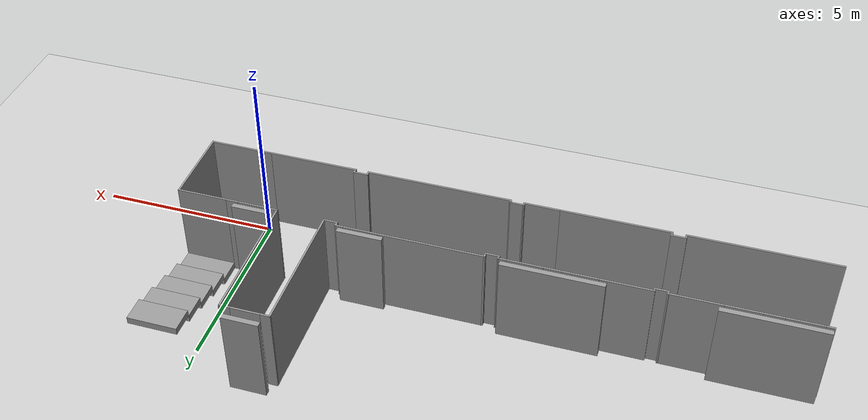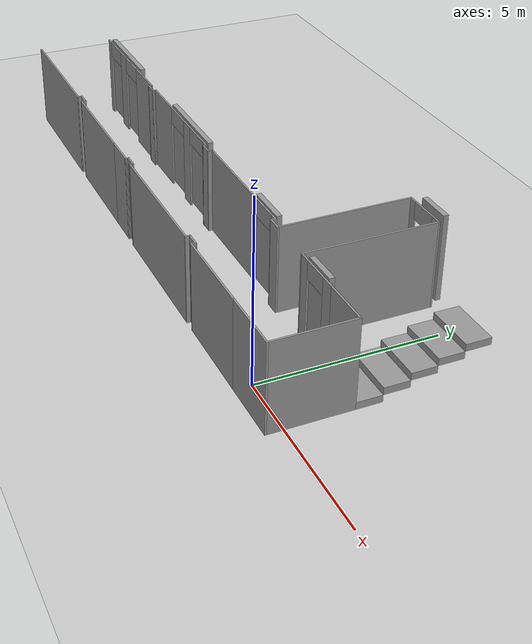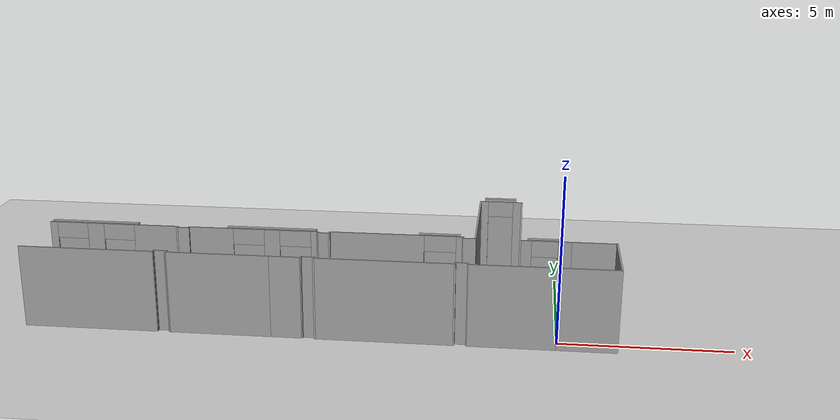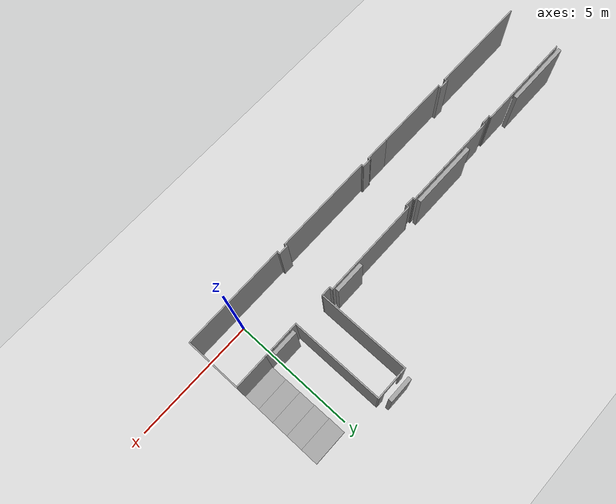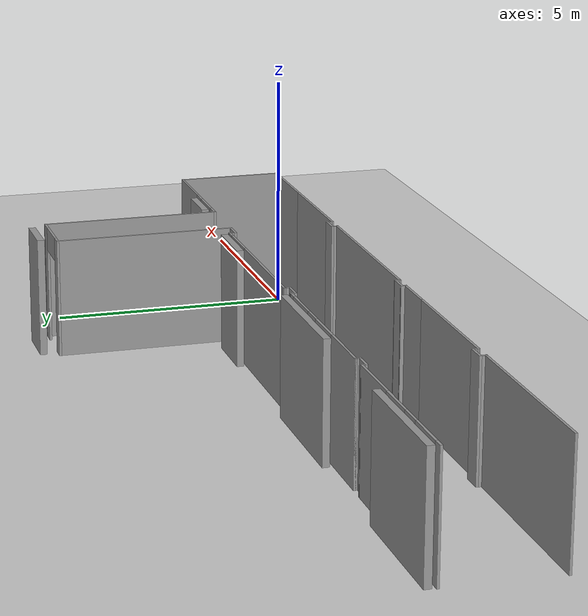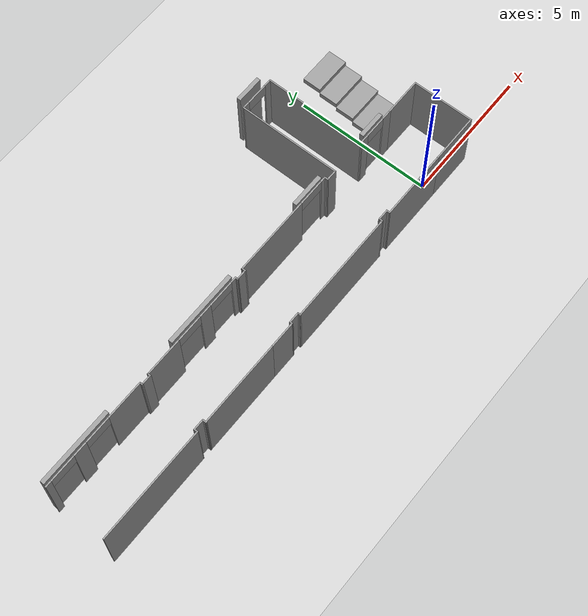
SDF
<sdf version="1.7">
 <world name="default">
  <model name="ground_plane">
   <static>1</static>
   <link name="link">
    <collision name="collision">
     <geometry><plane><normal>0 0 1</normal><size>100 100</size></plane></geometry>
     <surface><friction><ode><mu>100</mu><mu2>50</mu2></ode></friction></surface>
    </collision>
    <visual name="visual">
     <cast_shadows>0</cast_shadows>
     <geometry><plane><normal>0 0 1</normal><size>100 100</size></plane></geometry>
     <material>
      <script><uri>file://media/materials/scripts/gazebo.material</uri><name>Gazebo/Grey</name></script>
     </material>
    </visual>
   </link>
  </model>
  <model name="bot_world.world">
   <pose>-14.544 2.59256 0 0 -0 0</pose>
   <link name="Stairs_1">
    <visual name="Stairs_1_Visual_0">
     <pose>15.5557 -0.46112 0.1 0 -0 -3.14159</pose>
     <geometry><box><size>1.4 0.7 0.2</size></box></geometry>
     <material>
      <script><uri>file://media/materials/scripts/gazebo.material</uri><name>Gazebo/Grey</name></script>
      <ambient>1 1 1 1</ambient>
     </material>
     <meta><layer>0</layer></meta>
    </visual>
    <collision name="Stairs_1_Collision_0">
     <geometry><box><size>1.4 0.7 0.2</size></box></geometry>
     <pose>15.5557 -0.46112 0.1 0 -0 -3.14159</pose>
    </collision>
    <visual name="Stairs_1_Visual_1">
     <pose>15.5557 0.23888 0.3 0 -0 -3.14159</pose>
     <geometry><box><size>1.4 0.7 0.2</size></box></geometry>
     <material>
      <script><uri>file://media/materials/scripts/gazebo.material</uri><name>Gazebo/Grey</name></script>
      <ambient>1 1 1 1</ambient>
     </material>
     <meta><layer>0</layer></meta>
    </visual>
    <collision name="Stairs_1_Collision_1">
     <geometry><box><size>1.4 0.7 0.2</size></box></geometry>
     <pose>15.5557 0.23888 0.3 0 -0 -3.14159</pose>
    </collision>
    <visual name="Stairs_1_Visual_2">
     <pose>15.5557 0.93888 0.5 0 -0 -3.14159</pose>
     <geometry><box><size>1.4 0.7 0.2</size></box></geometry>
     <material>
      <script><uri>file://media/materials/scripts/gazebo.material</uri><name>Gazebo/Grey</name></script>
      <ambient>1 1 1 1</ambient>
     </material>
     <meta><layer>0</layer></meta>
    </visual>
    <collision name="Stairs_1_Collision_2">
     <geometry><box><size>1.4 0.7 0.2</size></box></geometry>
     <pose>15.5557 0.93888 0.5 0 -0 -3.14159</pose>
    </collision>
    <visual name="Stairs_1_Visual_3">
     <pose>15.5557 1.63888 0.7 0 -0 -3.14159</pose>
     <geometry><box><size>1.4 0.7 0.2</size></box></geometry>
     <material>
      <script><uri>file://media/materials/scripts/gazebo.material</uri><name>Gazebo/Grey</name></script>
      <ambient>1 1 1 1</ambient>
     </material>
     <meta><layer>0</layer></meta>
    </visual>
    <collision name="Stairs_1_Collision_3">
     <geometry><box><size>1.4 0.7 0.2</size></box></geometry>
     <pose>15.5557 1.63888 0.7 0 -0 -3.14159</pose>
    </collision>
    <visual name="Stairs_1_Visual_4">
     <pose>15.5557 2.33888 0.9 0 -0 -3.14159</pose>
     <geometry><box><size>1.4 0.7 0.2</size></box></geometry>
     <material>
      <script><uri>file://media/materials/scripts/gazebo.material</uri><name>Gazebo/Grey</name></script>
      <ambient>1 1 1 1</ambient>
     </material>
     <meta><layer>0</layer></meta>
    </visual>
    <collision name="Stairs_1_Collision_4">
     <geometry><box><size>1.4 0.7 0.2</size></box></geometry>
     <pose>15.5557 2.33888 0.9 0 -0 -3.14159</pose>
    </collision>
   </link>
   <link name="Wall_11">
    <collision name="Wall_11_Collision">
     <geometry><box><size>2.25963 0.05 2.5</size></box></geometry>
     <pose>0 0 1.25 0 -0 0</pose>
    </collision>
    <visual name="Wall_11_Visual">
     <pose>0 0 1.25 0 -0 0</pose>
     <geometry><box><size>2.25963 0.05 2.5</size></box></geometry>
     <material>
      <script><uri>file://media/materials/scripts/gazebo.material</uri><name>Gazebo/Grey</name></script>
      <ambient>1 1 1 1</ambient>
     </material>
     <meta><layer>0</layer></meta>
    </visual>
    <pose>16.2303 -1.92884 0 0 -0 -1.5708</pose>
   </link>
   <link name="Wall_115">
    <collision name="Wall_115_Collision">
     <geometry><box><size>3.06 0.05 2.5</size></box></geometry>
     <pose>0 0 1.25 0 -0 0</pose>
    </collision>
    <visual name="Wall_115_Visual">
     <pose>0 0 1.25 0 -0 0</pose>
     <geometry><box><size>3.06 0.05 2.5</size></box></geometry>
     <material>
      <script><uri>file://media/materials/scripts/gazebo.material</uri><name>Gazebo/Grey</name></script>
      <ambient>1 1 1 1</ambient>
     </material>
     <meta><layer>0</layer></meta>
    </visual>
    <pose>4.74433 -3.02584 0 0 -0 3.14159</pose>
   </link>
   <link name="Wall_117">
    <collision name="Wall_117_Collision">
     <geometry><box><size>0.16031 0.05 2.5</size></box></geometry>
     <pose>0 0 1.25 0 -0 0</pose>
    </collision>
    <visual name="Wall_117_Visual">
     <pose>0 0 1.25 0 -0 0</pose>
     <geometry><box><size>0.16031 0.05 2.5</size></box></geometry>
     <material>
      <script><uri>file://media/materials/scripts/gazebo.material</uri><name>Gazebo/Grey</name></script>
      <ambient>1 1 1 1</ambient>
     </material>
     <meta><layer>0</layer></meta>
    </visual>
    <pose>3.23963 -2.97069 0 0 -0 1.56535</pose>
   </link>
   <link name="Wall_118">
    <collision name="Wall_118_Collision">
     <geometry><box><size>0.42 0.05 2.5</size></box></geometry>
     <pose>0 0 1.25 0 -0 0</pose>
    </collision>
    <visual name="Wall_118_Visual">
     <pose>0 0 1.25 0 -0 0</pose>
     <geometry><box><size>0.42 0.05 2.5</size></box></geometry>
     <material>
      <script><uri>file://media/materials/scripts/gazebo.material</uri><name>Gazebo/Grey</name></script>
      <ambient>1 1 1 1</ambient>
     </material>
     <meta><layer>0</layer></meta>
    </visual>
    <pose>3.05433 -2.91433 0 0 -0 3.14159</pose>
   </link>
   <link name="Wall_119">
    <collision name="Wall_119_Collision">
     <geometry><box><size>0.16031 0.05 2.5</size></box></geometry>
     <pose>0 0 1.25 0 -0 0</pose>
    </collision>
    <visual name="Wall_119_Visual">
     <pose>0 0 1.25 0 -0 0</pose>
     <geometry><box><size>0.16031 0.05 2.5</size></box></geometry>
     <material>
      <script><uri>file://media/materials/scripts/gazebo.material</uri><name>Gazebo/Grey</name></script>
      <ambient>1 1 1 1</ambient>
     </material>
     <meta><layer>0</layer></meta>
    </visual>
    <pose>2.86963 -2.97069 0 0 -0 -1.57624</pose>
   </link>
   <link name="Wall_120">
    <collision name="Wall_120_Collision">
     <geometry><box><size>4.06 0.05 2.5</size></box></geometry>
     <pose>0 0 1.25 0 -0 0</pose>
    </collision>
    <visual name="Wall_120_Visual">
     <pose>0 0 1.25 0 -0 0</pose>
     <geometry><box><size>4.06 0.05 2.5</size></box></geometry>
     <material>
      <script><uri>file://media/materials/scripts/gazebo.material</uri><name>Gazebo/Grey</name></script>
      <ambient>1 1 1 1</ambient>
     </material>
     <meta><layer>0</layer></meta>
    </visual>
    <pose>0.864333 -3.02584 0 0 -0 -3.14159</pose>
   </link>
   <link name="Wall_13">
    <collision name="Wall_13_Collision">
     <geometry><box><size>1.4 0.05 2.5</size></box></geometry>
     <pose>0 0 1.25 0 -0 0</pose>
    </collision>
    <visual name="Wall_13_Visual">
     <pose>0 0 1.25 0 -0 0</pose>
     <geometry><box><size>1.4 0.05 2.5</size></box></geometry>
     <material>
      <script><uri>file://media/materials/scripts/gazebo.material</uri><name>Gazebo/Grey</name></script>
      <ambient>1 1 1 1</ambient>
     </material>
     <meta><layer>0</layer></meta>
    </visual>
    <pose>15.5553 -0.823841 0 0 -0 3.14159</pose>
   </link>
   <link name="Wall_15">
    <pose>14.1353 -0.823841 0 0 -0 3.14159</pose>
    <visual name="Wall_15_Visual_0">
     <pose>-0.569151 0 1.25 0 -0 0</pose>
     <geometry><box><size>0.401698 0.05 2.5</size></box></geometry>
     <material>
      <script><uri>file://media/materials/scripts/gazebo.material</uri><name>Gazebo/Grey</name></script>
      <ambient>1 1 1 1</ambient>
     </material>
     <meta><layer>0</layer></meta>
    </visual>
    <collision name="Wall_15_Collision_0">
     <geometry><box><size>0.401698 0.05 2.5</size></box></geometry>
     <pose>-0.569151 0 1.25 0 -0 0</pose>
    </collision>
    <visual name="Wall_15_Visual_1">
     <pose>0.590849 0 1.25 0 -0 0</pose>
     <geometry><box><size>0.358302 0.05 2.5</size></box></geometry>
     <material>
      <script><uri>file://media/materials/scripts/gazebo.material</uri><name>Gazebo/Grey</name></script>
      <ambient>1 1 1 1</ambient>
     </material>
     <meta><layer>0</layer></meta>
    </visual>
    <collision name="Wall_15_Collision_1">
     <geometry><box><size>0.358302 0.05 2.5</size></box></geometry>
     <pose>0.590849 0 1.25 0 -0 0</pose>
    </collision>
    <visual name="Wall_15_Visual_2">
     <pose>0.021698 0 2.25 0 -0 0</pose>
     <geometry><box><size>0.78 0.05 0.5</size></box></geometry>
     <material>
      <script><uri>file://media/materials/scripts/gazebo.material</uri><name>Gazebo/Grey</name></script>
      <ambient>1 1 1 1</ambient>
     </material>
     <meta><layer>0</layer></meta>
    </visual>
    <collision name="Wall_15_Collision_2">
     <geometry><box><size>0.78 0.05 0.5</size></box></geometry>
     <pose>0.021698 0 2.25 0 -0 0</pose>
    </collision>
   </link>
   <link name="Wall_17">
    <collision name="Wall_17_Collision">
     <geometry><box><size>1 0.15 2.5</size></box></geometry>
     <pose>0 0 1.25 0 -0 0</pose>
    </collision>
    <visual name="Wall_17_Visual">
     <pose>0 0 1.25 0 -0 0</pose>
     <geometry><box><size>1 0.15 2.5</size></box></geometry>
     <material>
      <script><uri>file://media/materials/scripts/gazebo.material</uri><name>Gazebo/Grey</name></script>
      <ambient>1 1 1 1</ambient>
     </material>
     <meta><layer>0</layer></meta>
    </visual>
    <pose>14.1043 -0.666199 0 0 -0 0</pose>
   </link>
   <link name="Wall_19">
    <collision name="Wall_19_Collision">
     <geometry><box><size>3.76 0.05 2.5</size></box></geometry>
     <pose>0 0 1.25 0 -0 0</pose>
    </collision>
    <visual name="Wall_19_Visual">
     <pose>0 0 1.25 0 -0 0</pose>
     <geometry><box><size>3.76 0.05 2.5</size></box></geometry>
     <material>
      <script><uri>file://media/materials/scripts/gazebo.material</uri><name>Gazebo/Grey</name></script>
      <ambient>1 1 1 1</ambient>
     </material>
     <meta><layer>0</layer></meta>
    </visual>
    <pose>13.3903 1.03116 0 0 -0 1.5708</pose>
   </link>
   <link name="Wall_21">
    <pose>12.7278 2.88616 0 0 -0 3.14159</pose>
    <visual name="Wall_21_Visual_0">
     <pose>-0.536013 0 1.25 0 -0 0</pose>
     <geometry><box><size>0.302974 0.05 2.5</size></box></geometry>
     <material>
      <script><uri>file://media/materials/scripts/gazebo.material</uri><name>Gazebo/Grey</name></script>
      <ambient>1 1 1 1</ambient>
     </material>
     <meta><layer>0</layer></meta>
    </visual>
    <collision name="Wall_21_Collision_0">
     <geometry><box><size>0.302974 0.05 2.5</size></box></geometry>
     <pose>-0.536013 0 1.25 0 -0 0</pose>
    </collision>
    <visual name="Wall_21_Visual_1">
     <pose>0.551487 0 1.25 0 -0 0</pose>
     <geometry><box><size>0.272026 0.05 2.5</size></box></geometry>
     <material>
      <script><uri>file://media/materials/scripts/gazebo.material</uri><name>Gazebo/Grey</name></script>
      <ambient>1 1 1 1</ambient>
     </material>
     <meta><layer>0</layer></meta>
    </visual>
    <collision name="Wall_21_Collision_1">
     <geometry><box><size>0.272026 0.05 2.5</size></box></geometry>
     <pose>0.551487 0 1.25 0 -0 0</pose>
    </collision>
    <visual name="Wall_21_Visual_2">
     <pose>0.015474 0 2.25 0 -0 0</pose>
     <geometry><box><size>0.8 0.05 0.5</size></box></geometry>
     <material>
      <script><uri>file://media/materials/scripts/gazebo.material</uri><name>Gazebo/Grey</name></script>
      <ambient>1 1 1 1</ambient>
     </material>
     <meta><layer>0</layer></meta>
    </visual>
    <collision name="Wall_21_Collision_2">
     <geometry><box><size>0.8 0.05 0.5</size></box></geometry>
     <pose>0.015474 0 2.25 0 -0 0</pose>
    </collision>
   </link>
   <link name="Wall_23">
    <collision name="Wall_23_Collision">
     <geometry><box><size>1 0.15 2.5</size></box></geometry>
     <pose>0 0 1.25 0 -0 0</pose>
    </collision>
    <visual name="Wall_23_Visual">
     <pose>0 0 1.25 0 -0 0</pose>
     <geometry><box><size>1 0.15 2.5</size></box></geometry>
     <material>
      <script><uri>file://media/materials/scripts/gazebo.material</uri><name>Gazebo/Grey</name></script>
      <ambient>1 1 1 1</ambient>
     </material>
     <meta><layer>0</layer></meta>
    </visual>
    <pose>12.6998 3.21334 0 0 -0 0</pose>
   </link>
   <link name="Wall_25">
    <collision name="Wall_25_Collision">
     <geometry><box><size>3.76 0.05 2.5</size></box></geometry>
     <pose>0 0 1.25 0 -0 0</pose>
    </collision>
    <visual name="Wall_25_Visual">
     <pose>0 0 1.25 0 -0 0</pose>
     <geometry><box><size>3.76 0.05 2.5</size></box></geometry>
     <material>
      <script><uri>file://media/materials/scripts/gazebo.material</uri><name>Gazebo/Grey</name></script>
      <ambient>1 1 1 1</ambient>
     </material>
     <meta><layer>0</layer></meta>
    </visual>
    <pose>12.0653 1.03116 0 0 -0 -1.5708</pose>
   </link>
   <link name="Wall_33">
    <collision name="Wall_33_Collision">
     <geometry><box><size>0.42 0.05 2.5</size></box></geometry>
     <pose>0 0 1.25 0 -0 0</pose>
    </collision>
    <visual name="Wall_33_Visual">
     <pose>0 0 1.25 0 -0 0</pose>
     <geometry><box><size>0.42 0.05 2.5</size></box></geometry>
     <material>
      <script><uri>file://media/materials/scripts/gazebo.material</uri><name>Gazebo/Grey</name></script>
      <ambient>1 1 1 1</ambient>
     </material>
     <meta><layer>0</layer></meta>
    </visual>
    <pose>11.8803 -0.823841 0 0 -0 3.14159</pose>
   </link>
   <link name="Wall_34">
    <collision name="Wall_34_Collision">
     <geometry><box><size>0.165815 0.05 2.5</size></box></geometry>
     <pose>0 0 1.25 0 -0 0</pose>
    </collision>
    <visual name="Wall_34_Visual">
     <pose>0 0 1.25 0 -0 0</pose>
     <geometry><box><size>0.165815 0.05 2.5</size></box></geometry>
     <material>
      <script><uri>file://media/materials/scripts/gazebo.material</uri><name>Gazebo/Grey</name></script>
      <ambient>1 1 1 1</ambient>
     </material>
     <meta><layer>0</layer></meta>
    </visual>
    <pose>11.6953 -0.765934 0 0 -0 1.57199</pose>
   </link>
   <link name="Wall_35">
    <pose>9.68019 -0.709288 0 0 -0 -3.14097</pose>
    <visual name="Wall_35_Visual_0">
     <pose>-1.92329 0 1.25 0 -0 0</pose>
     <geometry><box><size>0.233415 0.05 2.5</size></box></geometry>
     <material>
      <script><uri>file://media/materials/scripts/gazebo.material</uri><name>Gazebo/Grey</name></script>
      <ambient>1 1 1 1</ambient>
     </material>
     <meta><layer>0</layer></meta>
    </visual>
    <collision name="Wall_35_Collision_0">
     <geometry><box><size>0.233415 0.05 2.5</size></box></geometry>
     <pose>-1.92329 0 1.25 0 -0 0</pose>
    </collision>
    <visual name="Wall_35_Visual_1">
     <pose>0.596708 0 1.25 0 -0 0</pose>
     <geometry><box><size>2.88659 0.05 2.5</size></box></geometry>
     <material>
      <script><uri>file://media/materials/scripts/gazebo.material</uri><name>Gazebo/Grey</name></script>
      <ambient>1 1 1 1</ambient>
     </material>
     <meta><layer>0</layer></meta>
    </visual>
    <collision name="Wall_35_Collision_1">
     <geometry><box><size>2.88659 0.05 2.5</size></box></geometry>
     <pose>0.596708 0 1.25 0 -0 0</pose>
    </collision>
    <visual name="Wall_35_Visual_2">
     <pose>-1.32658 0 2.25 0 -0 0</pose>
     <geometry><box><size>0.96 0.05 0.5</size></box></geometry>
     <material>
      <script><uri>file://media/materials/scripts/gazebo.material</uri><name>Gazebo/Grey</name></script>
      <ambient>1 1 1 1</ambient>
     </material>
     <meta><layer>0</layer></meta>
    </visual>
    <collision name="Wall_35_Collision_2">
     <geometry><box><size>0.96 0.05 0.5</size></box></geometry>
     <pose>-1.32658 0 2.25 0 -0 0</pose>
    </collision>
   </link>
   <link name="Wall_37">
    <collision name="Wall_37_Collision">
     <geometry><box><size>1.25 0.15 2.5</size></box></geometry>
     <pose>0 0 1.25 0 -0 0</pose>
    </collision>
    <visual name="Wall_37_Visual">
     <pose>0 0 1.25 0 -0 0</pose>
     <geometry><box><size>1.25 0.15 2.5</size></box></geometry>
     <material>
      <script><uri>file://media/materials/scripts/gazebo.material</uri><name>Gazebo/Grey</name></script>
      <ambient>1 1 1 1</ambient>
     </material>
     <meta><layer>0</layer></meta>
    </visual>
    <pose>10.9877 -0.564022 0 0 -0 0</pose>
   </link>
   <link name="Wall_39">
    <collision name="Wall_39_Collision">
     <geometry><box><size>0.16433 0.05 2.5</size></box></geometry>
     <pose>0 0 1.25 0 -0 0</pose>
    </collision>
    <visual name="Wall_39_Visual">
     <pose>0 0 1.25 0 -0 0</pose>
     <geometry><box><size>0.16433 0.05 2.5</size></box></geometry>
     <material>
      <script><uri>file://media/materials/scripts/gazebo.material</uri><name>Gazebo/Grey</name></script>
      <ambient>1 1 1 1</ambient>
     </material>
     <meta><layer>0</layer></meta>
    </visual>
    <pose>7.6653 -0.767445 0 0 -0 -1.56897</pose>
   </link>
   <link name="Wall_40">
    <collision name="Wall_40_Collision">
     <geometry><box><size>0.408421 0.05 2.5</size></box></geometry>
     <pose>0 0 1.25 0 -0 0</pose>
    </collision>
    <visual name="Wall_40_Visual">
     <pose>0 0 1.25 0 -0 0</pose>
     <geometry><box><size>0.408421 0.05 2.5</size></box></geometry>
     <material>
      <script><uri>file://media/materials/scripts/gazebo.material</uri><name>Gazebo/Grey</name></script>
      <ambient>1 1 1 1</ambient>
     </material>
     <meta><layer>0</layer></meta>
    </visual>
    <pose>7.48596 -0.824491 0 0 -0 -3.14076</pose>
   </link>
   <link name="Wall_41">
    <collision name="Wall_41_Collision">
     <geometry><box><size>0.13 0.05 2.5</size></box></geometry>
     <pose>0 0 1.25 0 -0 0</pose>
    </collision>
    <visual name="Wall_41_Visual">
     <pose>0 0 1.25 0 -0 0</pose>
     <geometry><box><size>0.13 0.05 2.5</size></box></geometry>
     <material>
      <script><uri>file://media/materials/scripts/gazebo.material</uri><name>Gazebo/Grey</name></script>
      <ambient>1 1 1 1</ambient>
     </material>
     <meta><layer>0</layer></meta>
    </visual>
    <pose>7.30722 -0.78464 0 0 -0 1.56661</pose>
   </link>
   <link name="Wall_43">
    <pose>5.31239 -0.744641 0 0 -0 3.14159</pose>
    <visual name="Wall_43_Visual_0">
     <pose>-1.90075 0 1.25 0 -0 0</pose>
     <geometry><box><size>0.238496 0.05 2.5</size></box></geometry>
     <material>
      <script><uri>file://media/materials/scripts/gazebo.material</uri><name>Gazebo/Grey</name></script>
      <ambient>1 1 1 1</ambient>
     </material>
     <meta><layer>0</layer></meta>
    </visual>
    <collision name="Wall_43_Collision_0">
     <geometry><box><size>0.238496 0.05 2.5</size></box></geometry>
     <pose>-1.90075 0 1.25 0 -0 0</pose>
    </collision>
    <visual name="Wall_43_Visual_1">
     <pose>-0.582013 0 1.25 0 -0 0</pose>
     <geometry><box><size>0.478981 0.05 2.5</size></box></geometry>
     <material>
      <script><uri>file://media/materials/scripts/gazebo.material</uri><name>Gazebo/Grey</name></script>
      <ambient>1 1 1 1</ambient>
     </material>
     <meta><layer>0</layer></meta>
    </visual>
    <collision name="Wall_43_Collision_1">
     <geometry><box><size>0.478981 0.05 2.5</size></box></geometry>
     <pose>-0.582013 0 1.25 0 -0 0</pose>
    </collision>
    <visual name="Wall_43_Visual_2">
     <pose>1.31874 0 1.25 0 -0 0</pose>
     <geometry><box><size>1.40252 0.05 2.5</size></box></geometry>
     <material>
      <script><uri>file://media/materials/scripts/gazebo.material</uri><name>Gazebo/Grey</name></script>
      <ambient>1 1 1 1</ambient>
     </material>
     <meta><layer>0</layer></meta>
    </visual>
    <collision name="Wall_43_Collision_2">
     <geometry><box><size>1.40252 0.05 2.5</size></box></geometry>
     <pose>1.31874 0 1.25 0 -0 0</pose>
    </collision>
    <visual name="Wall_43_Visual_3">
     <pose>-1.3015 0 2.25 0 -0 0</pose>
     <geometry><box><size>0.96 0.05 0.5</size></box></geometry>
     <material>
      <script><uri>file://media/materials/scripts/gazebo.material</uri><name>Gazebo/Grey</name></script>
      <ambient>1 1 1 1</ambient>
     </material>
     <meta><layer>0</layer></meta>
    </visual>
    <collision name="Wall_43_Collision_3">
     <geometry><box><size>0.96 0.05 0.5</size></box></geometry>
     <pose>-1.3015 0 2.25 0 -0 0</pose>
    </collision>
    <visual name="Wall_43_Visual_4">
     <pose>0.137477 0 2.25 0 -0 0</pose>
     <geometry><box><size>0.96 0.05 0.5</size></box></geometry>
     <material>
      <script><uri>file://media/materials/scripts/gazebo.material</uri><name>Gazebo/Grey</name></script>
      <ambient>1 1 1 1</ambient>
     </material>
     <meta><layer>0</layer></meta>
    </visual>
    <collision name="Wall_43_Collision_4">
     <geometry><box><size>0.96 0.05 0.5</size></box></geometry>
     <pose>0.137477 0 2.25 0 -0 0</pose>
    </collision>
   </link>
   <link name="Wall_45">
    <collision name="Wall_45_Collision">
     <geometry><box><size>2.75 0.15 2.5</size></box></geometry>
     <pose>0 0 1.25 0 -0 0</pose>
    </collision>
    <visual name="Wall_45_Visual">
     <pose>0 0 1.25 0 -0 0</pose>
     <geometry><box><size>2.75 0.15 2.5</size></box></geometry>
     <material>
      <script><uri>file://media/materials/scripts/gazebo.material</uri><name>Gazebo/Grey</name></script>
      <ambient>1 1 1 1</ambient>
     </material>
     <meta><layer>0</layer></meta>
    </visual>
    <pose>5.86582 -0.581978 0 0 -0 0</pose>
   </link>
   <link name="Wall_47">
    <collision name="Wall_47_Collision">
     <geometry><box><size>0.13 0.05 2.5</size></box></geometry>
     <pose>0 0 1.25 0 -0 0</pose>
    </collision>
    <visual name="Wall_47_Visual">
     <pose>0 0 1.25 0 -0 0</pose>
     <geometry><box><size>0.13 0.05 2.5</size></box></geometry>
     <material>
      <script><uri>file://media/materials/scripts/gazebo.material</uri><name>Gazebo/Grey</name></script>
      <ambient>1 1 1 1</ambient>
     </material>
     <meta><layer>0</layer></meta>
    </visual>
    <pose>3.31739 -0.784641 0 0 -0 -1.5708</pose>
   </link>
   <link name="Wall_48">
    <collision name="Wall_48_Collision">
     <geometry><box><size>0.4 0.05 2.5</size></box></geometry>
     <pose>0 0 1.25 0 -0 0</pose>
    </collision>
    <visual name="Wall_48_Visual">
     <pose>0 0 1.25 0 -0 0</pose>
     <geometry><box><size>0.4 0.05 2.5</size></box></geometry>
     <material>
      <script><uri>file://media/materials/scripts/gazebo.material</uri><name>Gazebo/Grey</name></script>
      <ambient>1 1 1 1</ambient>
     </material>
     <meta><layer>0</layer></meta>
    </visual>
    <pose>3.14239 -0.824641 0 0 -0 3.14159</pose>
   </link>
   <link name="Wall_49">
    <collision name="Wall_49_Collision">
     <geometry><box><size>0.13 0.05 2.5</size></box></geometry>
     <pose>0 0 1.25 0 -0 0</pose>
    </collision>
    <visual name="Wall_49_Visual">
     <pose>0 0 1.25 0 -0 0</pose>
     <geometry><box><size>0.13 0.05 2.5</size></box></geometry>
     <material>
      <script><uri>file://media/materials/scripts/gazebo.material</uri><name>Gazebo/Grey</name></script>
      <ambient>1 1 1 1</ambient>
     </material>
     <meta><layer>0</layer></meta>
    </visual>
    <pose>2.96739 -0.784641 0 0 -0 1.5708</pose>
   </link>
   <link name="Wall_50">
    <pose>0.957388 -0.745687 0 0 -0 -3.14107</pose>
    <visual name="Wall_50_Visual_0">
     <pose>-1.33437 0 1.25 0 -0 0</pose>
     <geometry><box><size>1.40126 0.05 2.5</size></box></geometry>
     <material>
      <script><uri>file://media/materials/scripts/gazebo.material</uri><name>Gazebo/Grey</name></script>
      <ambient>1 1 1 1</ambient>
     </material>
     <meta><layer>0</layer></meta>
    </visual>
    <collision name="Wall_50_Collision_0">
     <geometry><box><size>1.40126 0.05 2.5</size></box></geometry>
     <pose>-1.33437 0 1.25 0 -0 0</pose>
    </collision>
    <visual name="Wall_50_Visual_1">
     <pose>0.585066 0 1.25 0 -0 0</pose>
     <geometry><box><size>0.517604 0.05 2.5</size></box></geometry>
     <material>
      <script><uri>file://media/materials/scripts/gazebo.material</uri><name>Gazebo/Grey</name></script>
      <ambient>1 1 1 1</ambient>
     </material>
     <meta><layer>0</layer></meta>
    </visual>
    <collision name="Wall_50_Collision_1">
     <geometry><box><size>0.517604 0.05 2.5</size></box></geometry>
     <pose>0.585066 0 1.25 0 -0 0</pose>
    </collision>
    <visual name="Wall_50_Visual_2">
     <pose>1.91943 0 1.25 0 -0 0</pose>
     <geometry><box><size>0.231132 0.05 2.5</size></box></geometry>
     <material>
      <script><uri>file://media/materials/scripts/gazebo.material</uri><name>Gazebo/Grey</name></script>
      <ambient>1 1 1 1</ambient>
     </material>
     <meta><layer>0</layer></meta>
    </visual>
    <collision name="Wall_50_Collision_2">
     <geometry><box><size>0.231132 0.05 2.5</size></box></geometry>
     <pose>1.91943 0 1.25 0 -0 0</pose>
    </collision>
    <visual name="Wall_50_Visual_3">
     <pose>-0.153736 0 2.25 0 -0 0</pose>
     <geometry><box><size>0.96 0.05 0.5</size></box></geometry>
     <material>
      <script><uri>file://media/materials/scripts/gazebo.material</uri><name>Gazebo/Grey</name></script>
      <ambient>1 1 1 1</ambient>
     </material>
     <meta><layer>0</layer></meta>
    </visual>
    <collision name="Wall_50_Collision_3">
     <geometry><box><size>0.96 0.05 0.5</size></box></geometry>
     <pose>-0.153736 0 2.25 0 -0 0</pose>
    </collision>
    <visual name="Wall_50_Visual_4">
     <pose>1.32387 0 2.25 0 -0 0</pose>
     <geometry><box><size>0.96 0.05 0.5</size></box></geometry>
     <material>
      <script><uri>file://media/materials/scripts/gazebo.material</uri><name>Gazebo/Grey</name></script>
      <ambient>1 1 1 1</ambient>
     </material>
     <meta><layer>0</layer></meta>
    </visual>
    <collision name="Wall_50_Collision_4">
     <geometry><box><size>0.96 0.05 0.5</size></box></geometry>
     <pose>1.32387 0 2.25 0 -0 0</pose>
    </collision>
   </link>
   <link name="Wall_62">
    <collision name="Wall_62_Collision">
     <geometry><box><size>2.75 0.15 2.5</size></box></geometry>
     <pose>0 0 1.25 0 -0 0</pose>
    </collision>
    <visual name="Wall_62_Visual">
     <pose>0 0 1.25 0 -0 0</pose>
     <geometry><box><size>2.75 0.15 2.5</size></box></geometry>
     <material>
      <script><uri>file://media/materials/scripts/gazebo.material</uri><name>Gazebo/Grey</name></script>
      <ambient>1 1 1 1</ambient>
     </material>
     <meta><layer>0</layer></meta>
    </visual>
    <pose>0.330692 -0.581875 0 0 -0 0</pose>
   </link>
   <link name="Wall_79">
    <collision name="Wall_79_Collision">
     <geometry><box><size>1.8 0.05 2.5</size></box></geometry>
     <pose>0 0 1.25 0 -0 0</pose>
    </collision>
    <visual name="Wall_79_Visual">
     <pose>0 0 1.25 0 -0 0</pose>
     <geometry><box><size>1.8 0.05 2.5</size></box></geometry>
     <material>
      <script><uri>file://media/materials/scripts/gazebo.material</uri><name>Gazebo/Grey</name></script>
      <ambient>1 1 1 1</ambient>
     </material>
     <meta><layer>0</layer></meta>
    </visual>
    <pose>15.3553 -3.03384 0 0 -0 3.14159</pose>
   </link>
   <link name="Wall_81">
    <collision name="Wall_81_Collision">
     <geometry><box><size>2.56 0.05 2.5</size></box></geometry>
     <pose>0 0 1.25 0 -0 0</pose>
    </collision>
    <visual name="Wall_81_Visual">
     <pose>0 0 1.25 0 -0 0</pose>
     <geometry><box><size>2.56 0.05 2.5</size></box></geometry>
     <material>
      <script><uri>file://media/materials/scripts/gazebo.material</uri><name>Gazebo/Grey</name></script>
      <ambient>1 1 1 1</ambient>
     </material>
     <meta><layer>0</layer></meta>
    </visual>
    <pose>13.2253 -3.03384 0 0 -0 3.14159</pose>
   </link>
   <link name="Wall_83">
    <collision name="Wall_83_Collision">
     <geometry><box><size>0.158889 0.05 2.5</size></box></geometry>
     <pose>0 0 1.25 0 -0 0</pose>
    </collision>
    <visual name="Wall_83_Visual">
     <pose>0 0 1.25 0 -0 0</pose>
     <geometry><box><size>0.158889 0.05 2.5</size></box></geometry>
     <material>
      <script><uri>file://media/materials/scripts/gazebo.material</uri><name>Gazebo/Grey</name></script>
      <ambient>1 1 1 1</ambient>
     </material>
     <meta><layer>0</layer></meta>
    </visual>
    <pose>11.9699 -2.9794 0 0 -0 1.57962</pose>
   </link>
   <link name="Wall_84">
    <collision name="Wall_84_Collision">
     <geometry><box><size>0.42 0.05 2.5</size></box></geometry>
     <pose>0 0 1.25 0 -0 0</pose>
    </collision>
    <visual name="Wall_84_Visual">
     <pose>0 0 1.25 0 -0 0</pose>
     <geometry><box><size>0.42 0.05 2.5</size></box></geometry>
     <material>
      <script><uri>file://media/materials/scripts/gazebo.material</uri><name>Gazebo/Grey</name></script>
      <ambient>1 1 1 1</ambient>
     </material>
     <meta><layer>0</layer></meta>
    </visual>
    <pose>11.7844 -2.9245 0 0 -0 3.14159</pose>
   </link>
   <link name="Wall_85">
    <collision name="Wall_85_Collision">
     <geometry><box><size>0.157583 0.05 2.5</size></box></geometry>
     <pose>0 0 1.25 0 -0 0</pose>
    </collision>
    <visual name="Wall_85_Visual">
     <pose>0 0 1.25 0 -0 0</pose>
     <geometry><box><size>0.157583 0.05 2.5</size></box></geometry>
     <material>
      <script><uri>file://media/materials/scripts/gazebo.material</uri><name>Gazebo/Grey</name></script>
      <ambient>1 1 1 1</ambient>
     </material>
     <meta><layer>0</layer></meta>
    </visual>
    <pose>11.5994 -2.97875 0 0 -0 -1.57101</pose>
   </link>
   <link name="Wall_86">
    <collision name="Wall_86_Collision">
     <geometry><box><size>4.07971 0.05 2.5</size></box></geometry>
     <pose>0 0 1.25 0 -0 0</pose>
    </collision>
    <visual name="Wall_86_Visual">
     <pose>0 0 1.25 0 -0 0</pose>
     <geometry><box><size>4.07971 0.05 2.5</size></box></geometry>
     <material>
      <script><uri>file://media/materials/scripts/gazebo.material</uri><name>Gazebo/Grey</name></script>
      <ambient>1 1 1 1</ambient>
     </material>
     <meta><layer>0</layer></meta>
    </visual>
    <pose>9.58449 -3.03247 0 0 -0 -3.14117</pose>
   </link>
   <link name="Wall_88">
    <collision name="Wall_88_Collision">
     <geometry><box><size>0.133732 0.05 2.5</size></box></geometry>
     <pose>0 0 1.25 0 -0 0</pose>
    </collision>
    <visual name="Wall_88_Visual">
     <pose>0 0 1.25 0 -0 0</pose>
     <geometry><box><size>0.133732 0.05 2.5</size></box></geometry>
     <material>
      <script><uri>file://media/materials/scripts/gazebo.material</uri><name>Gazebo/Grey</name></script>
      <ambient>1 1 1 1</ambient>
     </material>
     <meta><layer>0</layer></meta>
    </visual>
    <pose>7.56926 -2.99237 0 0 -0 1.5797</pose>
   </link>
   <link name="Wall_89">
    <collision name="Wall_89_Collision">
     <geometry><box><size>0.42 0.05 2.5</size></box></geometry>
     <pose>0 0 1.25 0 -0 0</pose>
    </collision>
    <visual name="Wall_89_Visual">
     <pose>0 0 1.25 0 -0 0</pose>
     <geometry><box><size>0.42 0.05 2.5</size></box></geometry>
     <material>
      <script><uri>file://media/materials/scripts/gazebo.material</uri><name>Gazebo/Grey</name></script>
      <ambient>1 1 1 1</ambient>
     </material>
     <meta><layer>0</layer></meta>
    </visual>
    <pose>7.38435 -2.95051 0 0 -0 3.14159</pose>
   </link>
   <link name="Wall_90">
    <collision name="Wall_90_Collision">
     <geometry><box><size>0.125337 0.05 2.5</size></box></geometry>
     <pose>0 0 1.25 0 -0 0</pose>
    </collision>
    <visual name="Wall_90_Visual">
     <pose>0 0 1.25 0 -0 0</pose>
     <geometry><box><size>0.125337 0.05 2.5</size></box></geometry>
     <material>
      <script><uri>file://media/materials/scripts/gazebo.material</uri><name>Gazebo/Grey</name></script>
      <ambient>1 1 1 1</ambient>
     </material>
     <meta><layer>0</layer></meta>
    </visual>
    <pose>7.19911 -2.98817 0 0 -0 -1.56494</pose>
   </link>
   <link name="Wall_92">
    <collision name="Wall_92_Collision">
     <geometry><box><size>1 0.05 2.5</size></box></geometry>
     <pose>0 0 1.25 0 -0 0</pose>
    </collision>
    <visual name="Wall_92_Visual">
     <pose>0 0 1.25 0 -0 0</pose>
     <geometry><box><size>1 0.05 2.5</size></box></geometry>
     <material>
      <script><uri>file://media/materials/scripts/gazebo.material</uri><name>Gazebo/Grey</name></script>
      <ambient>1 1 1 1</ambient>
     </material>
     <meta><layer>0</layer></meta>
    </visual>
    <pose>6.72433 -3.02584 0 0 -0 0</pose>
   </link>
   <static>1</static>
  </model>
 </world>
</sdf>
